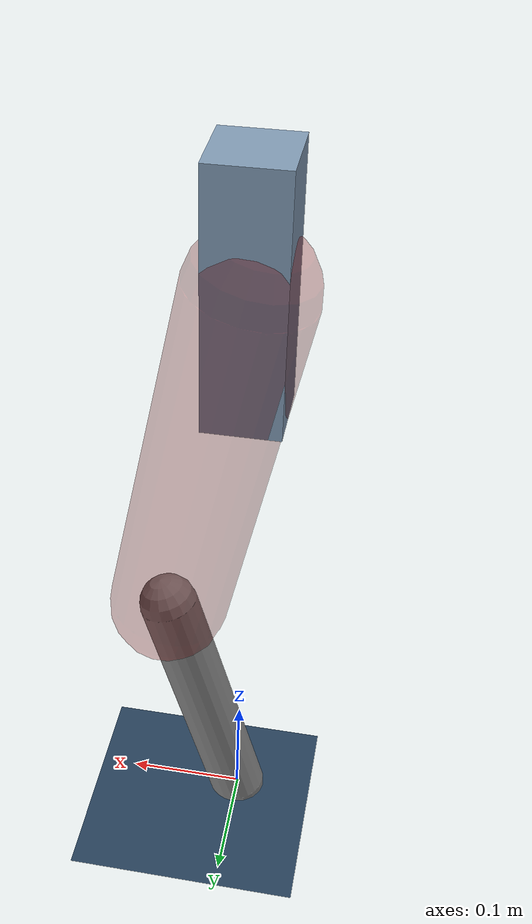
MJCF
<mujoco model="Hopper2D">
	<compiler inertiafromgeom="true" angle="radian" />
	<option timestep="0.001" integrator="implicit" cone="elliptic" solver="Newton" tolerance="1e-10" />

	<default>
		<geom contype="1" conaffinity="1" condim="3" friction="2 0.005 0.0001" solref="0.005 1" />
		<joint limited="true" damping="0.1" />
	</default>

	<asset>
		<texture name="skybox" type="skybox" builtin="gradient" rgb1=".4 .6 .8" rgb2="0 0 0" width="800" height="800" />
		<texture name="grid" type="2d" builtin="checker" rgb1=".1 .2 .3" rgb2=".2 .3 .4" width="300" height="300" mark="edge" markrgb=".2 .3 .4" />
		<material name="ground" texture="grid" texrepeat="1 1" texuniform="true" reflectance="0.1" />
		<material name="leg" rgba="0.5 0.6 0.7 1" />
	</asset>

	<worldbody>

		<geom name="floor" type="plane" size="5 5 0.25" material="ground" />

		<light directional="false" diffuse="0.8 0.8 0.8" specular="0.3 0.3 0.3" pos="0 0 2" dir="0 0 -1" />
		<light mode="targetbodycom" target="base" directional="false" diffuse="0.8 0.8 0.8" specular="0.3 0.3 0.3" pos="0 0 2" dir="0 0 -1" />

		<camera name="fixed" pos="0 -2 1" xyaxes="1 0 0 0 0 1" />
		<camera name="tracking" mode="trackcom" pos="0 -3 1" />

		<body name="root" pos="0 0 0.5243130950547221">
			<joint name="slide_x" type="slide" axis="1 0 0" range="-100 100" />
			<joint name="slide_z" type="slide" axis="0 0 1" range="0 10" />

			<body name="base" pos="0 0 0">
				<geom name="torso" type="box" size="0.03 0.03 0.1" mass="2.3449999999999998" material="leg" />

				<body name="link1" pos="0 0 0" euler="0 1.3641491007427047 0">
					<joint type="hinge" axis="0 -1 0" pos="0 0 0" name="hinge1" limited="true" range="-3.14 3.14" stiffness="0" damping="0.1" />
					<geom name="thigh" type="capsule" fromto="0 0 0 0.30803268155851704 0 0" size="0.05" rgba="0.5 0 0 0.3" mass="1.0104915083638477" />

					<body name="link2" pos="0.30803268155851704 0 0" euler="0 0.4830172523246964 0">
						<joint type="hinge" axis="0 -1 0" pos="0 0 0" name="hinge2" limited="true" range="-3.14 3.14" stiffness="0" damping="0.1" />
						<geom name="shank" type="capsule" fromto="0 0 0 0.23162360398332354 0 0" size="0.025" mass="0.4272988831866588" />

					</body>
				</body>
			</body>
		</body>
	</worldbody>

	<actuator>
		<motor name="torque1" joint="hinge1" ctrlrange="-26.59141904302364 26.59141904302364" ctrllimited="true" gear="1" />
		<motor name="torque2" joint="hinge2" ctrlrange="-114.95981295964076 114.95981295964076" ctrllimited="true" gear="1" />
	</actuator>
</mujoco>
